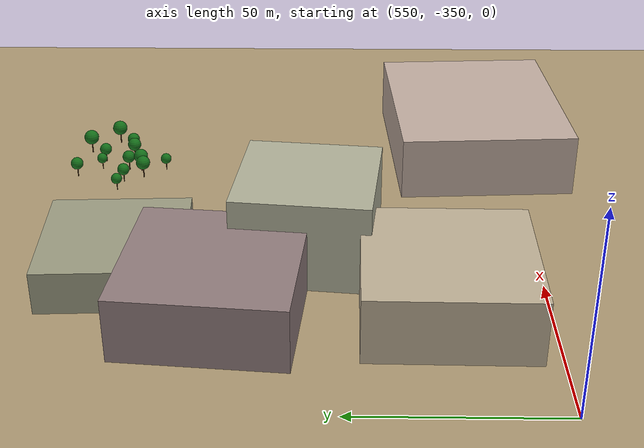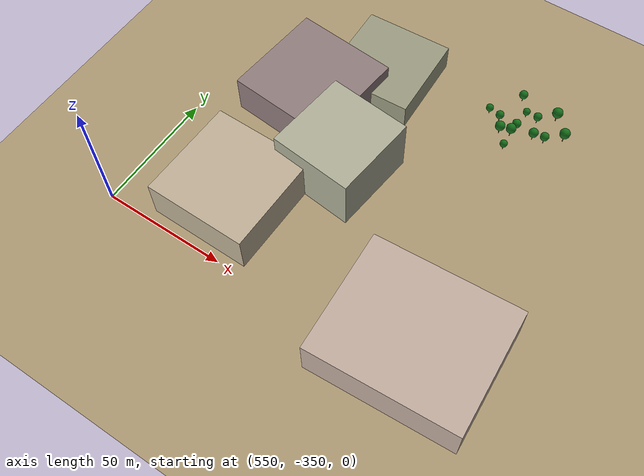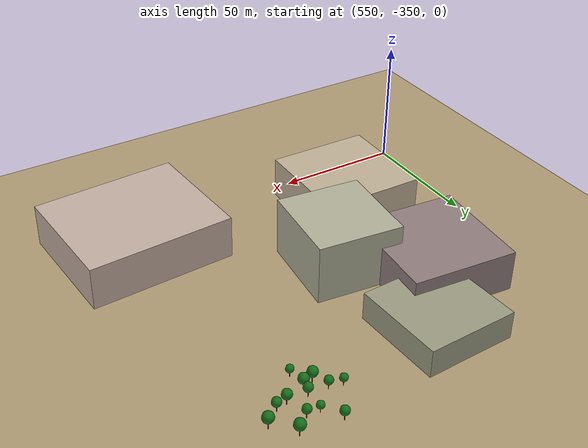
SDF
<sdf version="1.9">
 <world name="crossroad_world">
  <model name="ground_plane">
   <static>true</static>
   <pose>0 0 -0.05 0 0 0</pose>
   <link name="link">
    <collision name="collision">
     <geometry><plane><normal>0 0 1</normal><size>10000 10000</size></plane></geometry>
    </collision>
    <visual name="visual">
     <geometry><plane><normal>0 0 1</normal><size>15000 15000</size></plane></geometry>
     <material><ambient>0.68 0.60 0.45 1</ambient><diffuse>0.68 0.60 0.45 1</diffuse></material>
    </visual>
   </link>
  </model>
  <model name="tree_1">
   <static>true</static>
   <pose>661.451 -230.949 0 0 0 0</pose>
   <link name="link">
    <visual name="trunk">
     <pose>0 0 1.235 0 0 0</pose>
     <geometry><cylinder><radius>0.108</radius><length>2.470</length></cylinder></geometry>
     <material><ambient>0.38 0.22 0.08 1</ambient><diffuse>0.38 0.22 0.08 1</diffuse></material>
    </visual>
    <visual name="canopy">
     <pose>0 0 3.423 0 0 0</pose>
     <geometry><sphere><radius>1.467</radius></sphere></geometry>
     <material><ambient>0.08 0.44 0.10 1</ambient><diffuse>0.08 0.44 0.10 1</diffuse></material>
    </visual>
    <collision name="col">
     <pose>0 0 1.235 0 0 0</pose>
     <geometry><cylinder><radius>0.108</radius><length>2.470</length></cylinder></geometry>
    </collision>
   </link>
  </model>
  <model name="tree_2">
   <static>true</static>
   <pose>661.220 -249.598 0 0 0 0</pose>
   <link name="link">
    <visual name="trunk">
     <pose>0 0 1.272 0 0 0</pose>
     <geometry><cylinder><radius>0.111</radius><length>2.544</length></cylinder></geometry>
     <material><ambient>0.38 0.22 0.08 1</ambient><diffuse>0.38 0.22 0.08 1</diffuse></material>
    </visual>
    <visual name="canopy">
     <pose>0 0 3.526 0 0 0</pose>
     <geometry><sphere><radius>1.511</radius></sphere></geometry>
     <material><ambient>0.08 0.44 0.10 1</ambient><diffuse>0.08 0.44 0.10 1</diffuse></material>
    </visual>
    <collision name="col">
     <pose>0 0 1.272 0 0 0</pose>
     <geometry><cylinder><radius>0.111</radius><length>2.544</length></cylinder></geometry>
    </collision>
   </link>
  </model>
  <model name="tree_3">
   <static>true</static>
   <pose>678.953 -233.366 0 0 0 0</pose>
   <link name="link">
    <visual name="trunk">
     <pose>0 0 1.778 0 0 0</pose>
     <geometry><cylinder><radius>0.156</radius><length>3.557</length></cylinder></geometry>
     <material><ambient>0.38 0.22 0.08 1</ambient><diffuse>0.38 0.22 0.08 1</diffuse></material>
    </visual>
    <visual name="canopy">
     <pose>0 0 4.930 0 0 0</pose>
     <geometry><sphere><radius>2.112</radius></sphere></geometry>
     <material><ambient>0.08 0.44 0.10 1</ambient><diffuse>0.08 0.44 0.10 1</diffuse></material>
    </visual>
    <collision name="col">
     <pose>0 0 1.778 0 0 0</pose>
     <geometry><cylinder><radius>0.156</radius><length>3.557</length></cylinder></geometry>
    </collision>
   </link>
  </model>
  <model name="tree_5">
   <static>true</static>
   <pose>672.959 -238.356 0 0 0 0</pose>
   <link name="link">
    <visual name="trunk">
     <pose>0 0 1.478 0 0 0</pose>
     <geometry><cylinder><radius>0.129</radius><length>2.957</length></cylinder></geometry>
     <material><ambient>0.38 0.22 0.08 1</ambient><diffuse>0.38 0.22 0.08 1</diffuse></material>
    </visual>
    <visual name="canopy">
     <pose>0 0 4.098 0 0 0</pose>
     <geometry><sphere><radius>1.756</radius></sphere></geometry>
     <material><ambient>0.08 0.44 0.10 1</ambient><diffuse>0.08 0.44 0.10 1</diffuse></material>
    </visual>
    <collision name="col">
     <pose>0 0 1.478 0 0 0</pose>
     <geometry><cylinder><radius>0.129</radius><length>2.957</length></cylinder></geometry>
    </collision>
   </link>
  </model>
  <model name="tree_6">
   <static>true</static>
   <pose>666.366 -231.169 0 0 0 0</pose>
   <link name="link">
    <visual name="trunk">
     <pose>0 0 1.429 0 0 0</pose>
     <geometry><cylinder><radius>0.125</radius><length>2.859</length></cylinder></geometry>
     <material><ambient>0.38 0.22 0.08 1</ambient><diffuse>0.38 0.22 0.08 1</diffuse></material>
    </visual>
    <visual name="canopy">
     <pose>0 0 3.962 0 0 0</pose>
     <geometry><sphere><radius>1.698</radius></sphere></geometry>
     <material><ambient>0.08 0.44 0.10 1</ambient><diffuse>0.08 0.44 0.10 1</diffuse></material>
    </visual>
    <collision name="col">
     <pose>0 0 1.429 0 0 0</pose>
     <geometry><cylinder><radius>0.125</radius><length>2.859</length></cylinder></geometry>
    </collision>
   </link>
  </model>
  <model name="tree_7">
   <static>true</static>
   <pose>672.194 -225.962 0 0 0 0</pose>
   <link name="link">
    <visual name="trunk">
     <pose>0 0 1.789 0 0 0</pose>
     <geometry><cylinder><radius>0.157</radius><length>3.579</length></cylinder></geometry>
     <material><ambient>0.38 0.22 0.08 1</ambient><diffuse>0.38 0.22 0.08 1</diffuse></material>
    </visual>
    <visual name="canopy">
     <pose>0 0 4.960 0 0 0</pose>
     <geometry><sphere><radius>2.125</radius></sphere></geometry>
     <material><ambient>0.08 0.44 0.10 1</ambient><diffuse>0.08 0.44 0.10 1</diffuse></material>
    </visual>
    <collision name="col">
     <pose>0 0 1.789 0 0 0</pose>
     <geometry><cylinder><radius>0.157</radius><length>3.579</length></cylinder></geometry>
    </collision>
   </link>
  </model>
  <model name="tree_8">
   <static>true</static>
   <pose>656.673 -224.583 0 0 0 0</pose>
   <link name="link">
    <visual name="trunk">
     <pose>0 0 1.476 0 0 0</pose>
     <geometry><cylinder><radius>0.129</radius><length>2.953</length></cylinder></geometry>
     <material><ambient>0.38 0.22 0.08 1</ambient><diffuse>0.38 0.22 0.08 1</diffuse></material>
    </visual>
    <visual name="canopy">
     <pose>0 0 4.093 0 0 0</pose>
     <geometry><sphere><radius>1.753</radius></sphere></geometry>
     <material><ambient>0.08 0.44 0.10 1</ambient><diffuse>0.08 0.44 0.10 1</diffuse></material>
    </visual>
    <collision name="col">
     <pose>0 0 1.476 0 0 0</pose>
     <geometry><cylinder><radius>0.129</radius><length>2.953</length></cylinder></geometry>
    </collision>
   </link>
  </model>
  <model name="tree_12">
   <static>true</static>
   <pose>668.604 -239.322 0 0 0 0</pose>
   <link name="link">
    <visual name="trunk">
     <pose>0 0 1.602 0 0 0</pose>
     <geometry><cylinder><radius>0.140</radius><length>3.205</length></cylinder></geometry>
     <material><ambient>0.38 0.22 0.08 1</ambient><diffuse>0.38 0.22 0.08 1</diffuse></material>
    </visual>
    <visual name="canopy">
     <pose>0 0 4.442 0 0 0</pose>
     <geometry><sphere><radius>1.903</radius></sphere></geometry>
     <material><ambient>0.08 0.44 0.10 1</ambient><diffuse>0.08 0.44 0.10 1</diffuse></material>
    </visual>
    <collision name="col">
     <pose>0 0 1.602 0 0 0</pose>
     <geometry><cylinder><radius>0.140</radius><length>3.205</length></cylinder></geometry>
    </collision>
   </link>
  </model>
  <model name="tree_17">
   <static>true</static>
   <pose>660.463 -242.436 0 0 0 0</pose>
   <link name="link">
    <visual name="trunk">
     <pose>0 0 1.695 0 0 0</pose>
     <geometry><cylinder><radius>0.148</radius><length>3.391</length></cylinder></geometry>
     <material><ambient>0.38 0.22 0.08 1</ambient><diffuse>0.38 0.22 0.08 1</diffuse></material>
    </visual>
    <visual name="canopy">
     <pose>0 0 4.700 0 0 0</pose>
     <geometry><sphere><radius>2.013</radius></sphere></geometry>
     <material><ambient>0.08 0.44 0.10 1</ambient><diffuse>0.08 0.44 0.10 1</diffuse></material>
    </visual>
    <collision name="col">
     <pose>0 0 1.695 0 0 0</pose>
     <geometry><cylinder><radius>0.148</radius><length>3.391</length></cylinder></geometry>
    </collision>
   </link>
  </model>
  <model name="tree_18">
   <static>true</static>
   <pose>648.470 -237.270 0 0 0 0</pose>
   <link name="link">
    <visual name="trunk">
     <pose>0 0 1.288 0 0 0</pose>
     <geometry><cylinder><radius>0.113</radius><length>2.576</length></cylinder></geometry>
     <material><ambient>0.38 0.22 0.08 1</ambient><diffuse>0.38 0.22 0.08 1</diffuse></material>
    </visual>
    <visual name="canopy">
     <pose>0 0 3.570 0 0 0</pose>
     <geometry><sphere><radius>1.529</radius></sphere></geometry>
     <material><ambient>0.08 0.44 0.10 1</ambient><diffuse>0.08 0.44 0.10 1</diffuse></material>
    </visual>
    <collision name="col">
     <pose>0 0 1.288 0 0 0</pose>
     <geometry><cylinder><radius>0.113</radius><length>2.576</length></cylinder></geometry>
    </collision>
   </link>
  </model>
  <model name="tree_19">
   <static>true</static>
   <pose>656.312 -243.668 0 0 0 0</pose>
   <link name="link">
    <visual name="trunk">
     <pose>0 0 1.673 0 0 0</pose>
     <geometry><cylinder><radius>0.146</radius><length>3.346</length></cylinder></geometry>
     <material><ambient>0.38 0.22 0.08 1</ambient><diffuse>0.38 0.22 0.08 1</diffuse></material>
    </visual>
    <visual name="canopy">
     <pose>0 0 4.638 0 0 0</pose>
     <geometry><sphere><radius>1.987</radius></sphere></geometry>
     <material><ambient>0.08 0.44 0.10 1</ambient><diffuse>0.08 0.44 0.10 1</diffuse></material>
    </visual>
    <collision name="col">
     <pose>0 0 1.673 0 0 0</pose>
     <geometry><cylinder><radius>0.146</radius><length>3.346</length></cylinder></geometry>
    </collision>
   </link>
  </model>
  <model name="tree_22">
   <static>true</static>
   <pose>661.032 -238.815 0 0 0 0</pose>
   <link name="link">
    <visual name="trunk">
     <pose>0 0 1.507 0 0 0</pose>
     <geometry><cylinder><radius>0.132</radius><length>3.014</length></cylinder></geometry>
     <material><ambient>0.38 0.22 0.08 1</ambient><diffuse>0.38 0.22 0.08 1</diffuse></material>
    </visual>
    <visual name="canopy">
     <pose>0 0 4.178 0 0 0</pose>
     <geometry><sphere><radius>1.790</radius></sphere></geometry>
     <material><ambient>0.08 0.44 0.10 1</ambient><diffuse>0.08 0.44 0.10 1</diffuse></material>
    </visual>
    <collision name="col">
     <pose>0 0 1.507 0 0 0</pose>
     <geometry><cylinder><radius>0.132</radius><length>3.014</length></cylinder></geometry>
    </collision>
   </link>
  </model>
  <model name="tree_24">
   <static>true</static>
   <pose>653.511 -238.410 0 0 0 0</pose>
   <link name="link">
    <visual name="trunk">
     <pose>0 0 1.415 0 0 0</pose>
     <geometry><cylinder><radius>0.124</radius><length>2.830</length></cylinder></geometry>
     <material><ambient>0.38 0.22 0.08 1</ambient><diffuse>0.38 0.22 0.08 1</diffuse></material>
    </visual>
    <visual name="canopy">
     <pose>0 0 3.922 0 0 0</pose>
     <geometry><sphere><radius>1.680</radius></sphere></geometry>
     <material><ambient>0.08 0.44 0.10 1</ambient><diffuse>0.08 0.44 0.10 1</diffuse></material>
    </visual>
    <collision name="col">
     <pose>0 0 1.415 0 0 0</pose>
     <geometry><cylinder><radius>0.124</radius><length>2.830</length></cylinder></geometry>
    </collision>
   </link>
  </model>
  <model name="building_187">
   <static>true</static>
   <pose>614.198 -292.056 11.720 0 0 -0.104</pose>
   <link name="link">
    <visual name="body">
     <geometry><box><size>33.49 34.58 23.44</size></box></geometry>
     <material><ambient>0.69 0.69 0.60 1</ambient><diffuse>0.69 0.69 0.60 1</diffuse></material>
    </visual>
    <collision name="col"><geometry><box><size>33.49 34.58 23.44</size></box></geometry></collision>
   </link>
  </model>
  <model name="building_635">
   <static>true</static>
   <pose>675.319 -339.794 8.566 0 0 0.058</pose>
   <link name="link">
    <visual name="body">
     <geometry><box><size>57.75 48.20 17.13</size></box></geometry>
     <material><ambient>0.76 0.68 0.63 1</ambient><diffuse>0.76 0.68 0.63 1</diffuse></material>
    </visual>
    <collision name="col"><geometry><box><size>57.75 48.20 17.13</size></box></geometry></collision>
   </link>
  </model>
  <model name="building_689">
   <static>true</static>
   <pose>588.565 -325.312 8.298 0 0 -0.013</pose>
   <link name="link">
    <visual name="body">
     <geometry><box><size>41.25 41.11 16.60</size></box></geometry>
     <material><ambient>0.75 0.69 0.59 1</ambient><diffuse>0.75 0.69 0.59 1</diffuse></material>
    </visual>
    <collision name="col"><geometry><box><size>41.25 41.11 16.60</size></box></geometry></collision>
   </link>
  </model>
  <model name="building_690">
   <static>true</static>
   <pose>605.109 -244.650 5.519 0 0 0.046</pose>
   <link name="link">
    <visual name="body">
     <geometry><box><size>35.87 35.86 11.04</size></box></geometry>
     <material><ambient>0.61 0.61 0.51 1</ambient><diffuse>0.61 0.61 0.51 1</diffuse></material>
    </visual>
    <collision name="col"><geometry><box><size>35.87 35.86 11.04</size></box></geometry></collision>
   </link>
  </model>
  <model name="building_692">
   <static>true</static>
   <pose>586.993 -270.447 8.115 0 0 -0.088</pose>
   <link name="link">
    <visual name="body">
     <geometry><box><size>41.67 41.50 16.23</size></box></geometry>
     <material><ambient>0.57 0.49 0.49 1</ambient><diffuse>0.57 0.49 0.49 1</diffuse></material>
    </visual>
    <collision name="col"><geometry><box><size>41.67 41.50 16.23</size></box></geometry></collision>
   </link>
  </model>
 </world>
</sdf>
